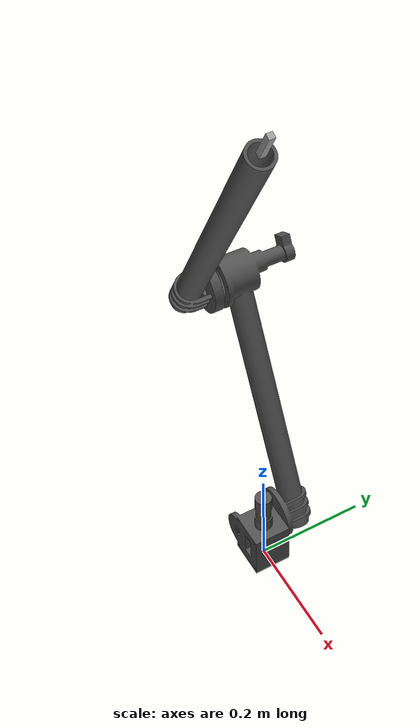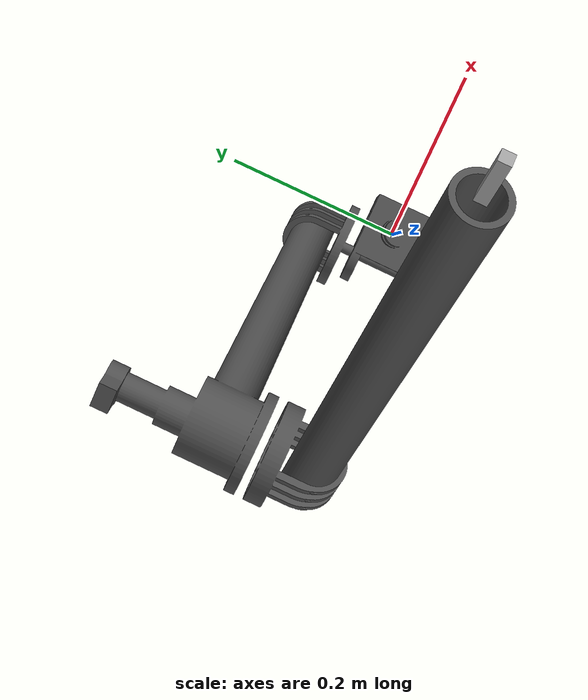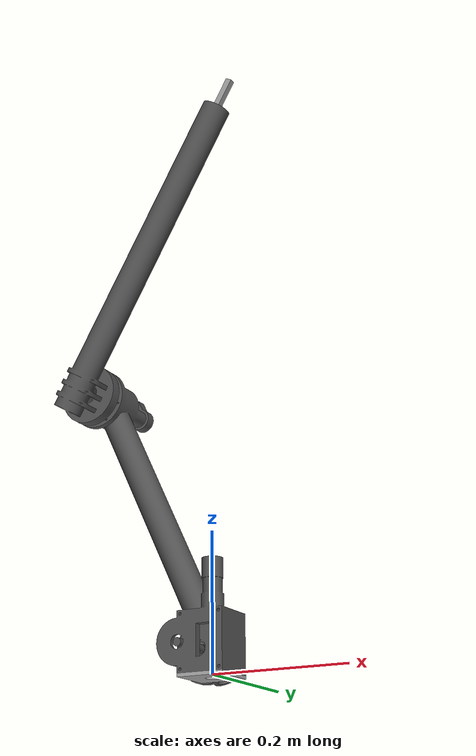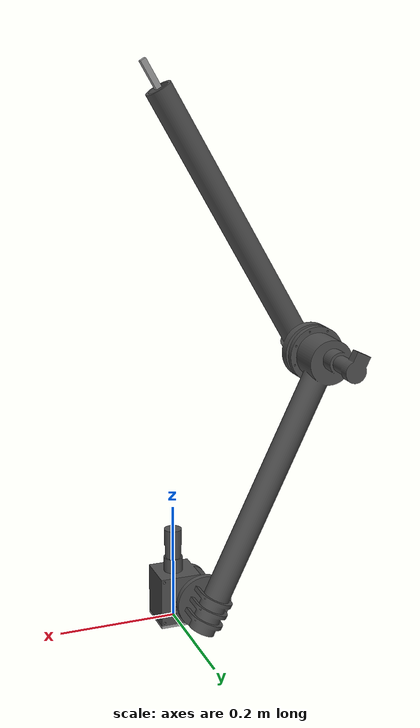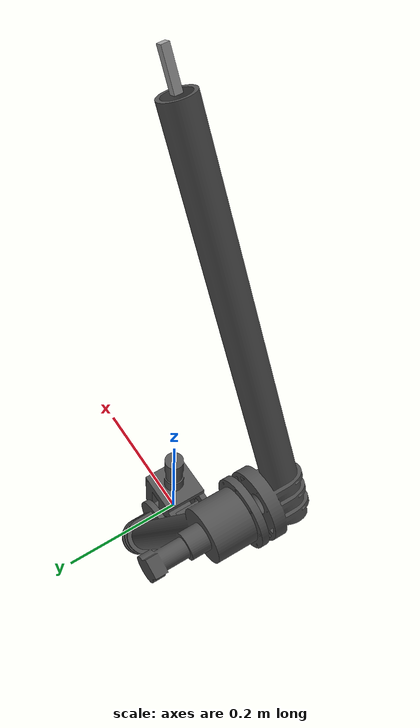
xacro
<?xml version="1.0" ?>
<robot name="arm" xmlns:xacro="http://www.ros.org/wiki/xacro">

<xacro:include filename="$(find arm_description)/urdf/materials.xacro" />
<xacro:include filename="$(find arm_description)/urdf/arm.trans" />
<xacro:include filename="$(find arm_description)/urdf/arm.gazebo" />
<link name="base_link">
   <inertial>
    <origin xyz="-0.002716977299773592 1.9808719046125134e-13 -0.002500000000000375" rpy="0 0 0"/>
    <mass value="150"/>
    <inertia ixx="10" iyy="10" izz="15" ixy="0" iyz="0.0" ixz="-10"/>
  </inertial>
  <visual>
    <origin xyz="0 0 0" rpy="0 0 0"/>
    <geometry>
      <mesh filename="package://arm_description/meshes/base_link.stl" scale="0.001 0.001 0.001"/>
    </geometry>
    <material name="steel_satin"/>
  </visual>
  <collision>
    <origin xyz="0 0 0" rpy="0 0 0"/>
    <geometry>
      <mesh filename="package://arm_description/meshes/base_link.stl" scale="0.001 0.001 0.001"/>
    </geometry>
  </collision>
</link>

<link name="link1_1">
  <inertial>
    <origin xyz="-0.1170701569437167 0.05258495071306836 0.24677061589144064" rpy="0 0 0"/>
    <mass value="1.5"/>
    <inertia ixx="0.20432" iyy="0.24363" izz="0.5288" ixy="0.456" iyz="-0.1594" ixz="0.9271"/>
  </inertial>
  <visual>
    <origin xyz="0.0375 -0.034 -0.0425" rpy="0 0 0"/>
    <geometry>
      <mesh filename="package://arm_description/meshes/link1_1.stl" scale="0.001 0.001 0.001"/>
    </geometry>
    <material name="default"/>
  </visual>
  <collision>
    <origin xyz="0.0375 -0.034 -0.0425" rpy="0 0 0"/>
    <geometry>
      <mesh filename="package://arm_description/meshes/link1_1.stl" scale="0.001 0.001 0.001"/>
    </geometry>
  </collision>
</link>

<link name="link2_1">
  <inertial>
    <origin xyz="0.0912652794492105 -0.04755997480137449 0.15715086928559246" rpy="0 0 0"/>
    <mass value="1"/>
    <inertia ixx="0.52" iyy="0.1219" izz="0.3285" ixy="0.233" iyz="0.401" ixz="-0.5183"/>
  </inertial>
  <visual>
    <origin xyz="0.235094 -0.046 -0.459007" rpy="0 0 0"/>
    <geometry>
      <mesh filename="package://arm_description/meshes/link2_1.stl" scale="0.001 0.001 0.001"/>
    </geometry>
    <material name="default"/>
  </visual>
  <collision>
    <origin xyz="0.235094 -0.046 -0.459007" rpy="0 0 0"/>
    <geometry>
      <mesh filename="package://arm_description/meshes/link2_1.stl" scale="0.001 0.001 0.001"/>
    </geometry>
  </collision>
</link>

<link name="tip_1">
  <inertial>
    <origin xyz="0.012554620120246197 2.599084142351771e-13 0.021619020423368274" rpy="0 0 0"/>
    <mass value="0.3"/>
    <inertia ixx="0.05" iyy="0.05" izz="0.03" ixy="0.0" iyz="0.0" ixz="0.1"/>
  </inertial>
  <visual>
    <origin xyz="-0.016007 0.0075 -0.891382" rpy="0 0 0"/>
    <geometry>
      <mesh filename="package://arm_description/meshes/tip_1.stl" scale="0.001 0.001 0.001"/>
    </geometry>
    <material name="steel_satin"/>
  </visual>
  <collision>
    <origin xyz="-0.016007 0.0075 -0.891382" rpy="0 0 0"/>
    <geometry>
      <mesh filename="package://arm_description/meshes/tip_1.stl" scale="0.001 0.001 0.001"/>
    </geometry>
  </collision>
</link>

<link name="shoulder_1">
  <inertial>
    <origin xyz="-0.00379841512801708 -4.326319553927361e-16 0.05885490789415437" rpy="0 0 0"/>
    <mass value="1"/>
    <inertia ixx="0.5" iyy="0.639" izz="0.3" ixy="0.0" iyz="-0.0" ixz="0.01"/>
  </inertial>
  <visual>
    <origin xyz="0.0 -0.0 0.0" rpy="0 0 0"/>
    <geometry>
      <mesh filename="package://arm_description/meshes/shoulder_1.stl" scale="0.001 0.001 0.001"/>
    </geometry>
    <material name="default"/>
  </visual>
  <collision>
    <origin xyz="0.0 -0.0 0.0" rpy="0 0 0"/>
    <geometry>
      <mesh filename="package://arm_description/meshes/shoulder_1.stl" scale="0.001 0.001 0.001"/>
    </geometry>
  </collision>
</link>

<joint name="Rev1" type="continuous">
  <origin xyz="-0.0375 0.034 0.0425" rpy="0 0 0"/>
  <parent link="shoulder_1"/>
  <child link="link1_1"/>
  <axis xyz="-0.0 1.0 -0.0"/>

</joint>

<joint name="Rev2" type="continuous">
  <origin xyz="-0.197594 0.012 0.416507" rpy="0 0 0"/>
  <parent link="link1_1"/>
  <child link="link2_1"/>
  <axis xyz="0.0 -1.0 0.0"/>

</joint>

<joint name="Rev3" type="revolute">
  <origin xyz="0.251101 -0.0535 0.432375" rpy="0 0 0"/>
  <parent link="link2_1"/>
  <child link="tip_1"/>
  <axis xyz="-0.0 1.0 0.0"/>
  <limit upper="1.22173" lower="-1.22173" effort="100" velocity="100"/>
</joint>

<joint name="Rev4" type="continuous">
  <origin xyz="0.0 0.0 0.0" rpy="0 0 0"/>
  <parent link="base_link"/>
  <child link="shoulder_1"/>
  <axis xyz="-0.0 0.0 1.0"/>

</joint>

</robot>

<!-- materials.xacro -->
<robot name="arm" xmlns:xacro="http://www.ros.org/wiki/xacro" >

<material name="silver_default">
  <color rgba="0.700 0.700 0.700 1.000"/>
</material>
<material name="default">
  <color rgba="0.3137254901960784 0.3137254901960784 0.3137254901960784 1.0"/>
</material>
<material name="steel_satin">
  <color rgba="0.6274509803921569 0.6274509803921569 0.6274509803921569 1.0"/>
</material>

</robot>

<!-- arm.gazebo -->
<robot name="arm" xmlns:xacro="http://www.ros.org/wiki/xacro" >

<xacro:property name="body_color" value="Gazebo/Silver" />

<gazebo>
  <plugin name="control" filename="libgazebo_ros_control.so"/>
</gazebo>
<gazebo reference="base_link">
  <material>${body_color}</material>
  <mu1>0.2</mu1>
  <mu2>0.2</mu2>
  <selfCollide>true</selfCollide>
  <gravity>true</gravity>
</gazebo>

<gazebo reference="link1_1">
  <material>${body_color}</material>
  <mu1>0.2</mu1>
  <mu2>0.2</mu2>
  <selfCollide>true</selfCollide>
</gazebo>

<gazebo reference="link2_1">
  <material>${body_color}</material>
  <mu1>0.2</mu1>
  <mu2>0.2</mu2>
  <selfCollide>true</selfCollide>
</gazebo>

<gazebo reference="tip_1">
  <material>${body_color}</material>
  <mu1>0.2</mu1>
  <mu2>0.2</mu2>
  <selfCollide>true</selfCollide>
</gazebo>

<gazebo reference="shoulder_1">
  <material>${body_color}</material>
  <mu1>0.2</mu1>
  <mu2>0.2</mu2>
  <selfCollide>true</selfCollide>
</gazebo>

</robot>
